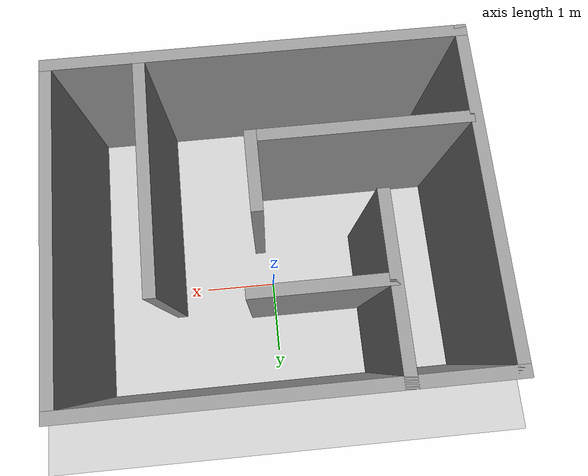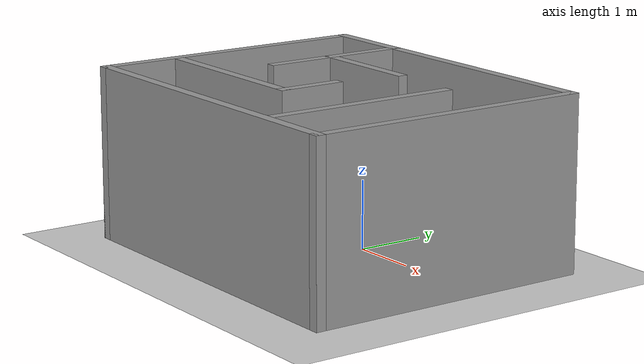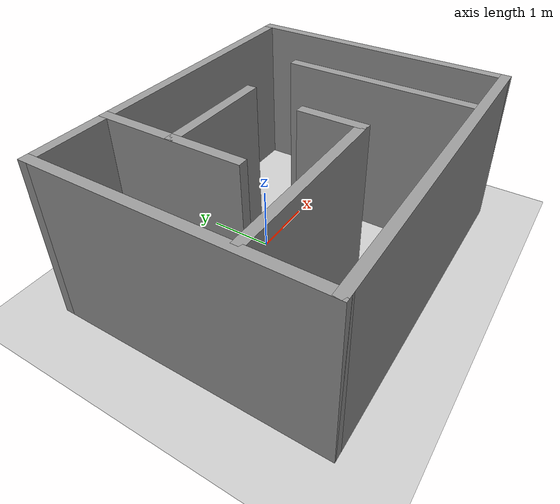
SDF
<sdf version="1.7">
 <world name="default">
  <light name="sun" type="directional">
   <pose>0 0 10 0 -0 0</pose>
   <diffuse>0.8 0.8 0.8 1</diffuse>
   <specular>0.2 0.2 0.2 1</specular>
   <attenuation>
    <range>1000</range>
    <constant>0.9</constant>
    <linear>0.01</linear>
    <quadratic>0.001</quadratic>
   </attenuation>
   <direction>-0.5 0.1 -0.9</direction>
   <spot><inner_angle>0</inner_angle><outer_angle>0</outer_angle><falloff>0</falloff></spot>
  </light>
  <model name="ground_plane">
   <static>1</static>
   <link name="link">
    <collision name="collision">
     <geometry><plane><normal>0 0 1</normal><size>100 100</size></plane></geometry>
     <surface>
      <contact><collide_bitmask>65535</collide_bitmask></contact>
      <friction><ode><mu>100</mu><mu2>50</mu2></ode></friction>
     </surface>
    </collision>
    <visual name="visual">
     <cast_shadows>0</cast_shadows>
     <geometry><plane><normal>0 0 1</normal><size>100 100</size></plane></geometry>
     <material>
      <script><uri>file://media/materials/scripts/gazebo.material</uri><name>Gazebo/Grey</name></script>
     </material>
    </visual>
   </link>
  </model>
  <plugin filename="gz-sim-physics-system" name="gz::sim::systems::Physics"/>
  <plugin filename="gz-sim-user-commands-system" name="gz::sim::systems::UserCommands"/>
  <plugin filename="gz-sim-scene-broadcaster-system" name="gz::sim::systems::SceneBroadcaster"/>
  <plugin filename="gz-sim-sensors-system" name="gz::sim::systems::Sensors">
   <render_engine>ogre2</render_engine>
  </plugin>
  <plugin filename="gz-sim-imu-system" name="gz::sim::systems::Imu"/>
  <gravity>0 0 -9.8</gravity>
  <magnetic_field>6e-06 2.3e-05 -4.2e-05</magnetic_field>
  <atmosphere type="adiabatic"/>
  <physics type="ode">
   <max_step_size>0.001</max_step_size>
   <real_time_factor>1</real_time_factor>
   <real_time_update_rate>1000</real_time_update_rate>
  </physics>
  <scene><ambient>0.4 0.4 0.4 1</ambient><background>0.7 0.7 0.7 1</background><shadows>1</shadows></scene>
  <spherical_coordinates>
   <surface_model>EARTH_WGS84</surface_model>
   <latitude_deg>0</latitude_deg>
   <longitude_deg>0</longitude_deg>
   <elevation>0</elevation>
   <heading_deg>0</heading_deg>
  </spherical_coordinates>
  <model name="final_version">
   <link name="Wall_0">
    <collision name="Wall_0_Collision">
     <geometry><box><size>4.25 0.15 2.5</size></box></geometry>
     <pose>0 0 1.25 0 -0 0</pose>
    </collision>
    <visual name="Wall_0_Visual">
     <pose>0 0 1.25 0 -0 0</pose>
     <geometry><box><size>4.25 0.15 2.5</size></box></geometry>
     <material>
      <script><uri>file://media/materials/scripts/gazebo.material</uri><name>Gazebo/Grey</name></script>
      <ambient>1 1 1 1</ambient>
     </material>
     <meta><layer>0</layer></meta>
    </visual>
    <pose>-2.55 -0.5225 0 0 -0 -1.5708</pose>
   </link>
   <link name="Wall_16">
    <collision name="Wall_16_Collision">
     <geometry><box><size>2.25 0.15 2.5</size></box></geometry>
     <pose>0 0 1.25 0 -0 0</pose>
    </collision>
    <visual name="Wall_16_Visual">
     <pose>0 0 1.25 0 -0 0</pose>
     <geometry><box><size>2.25 0.15 2.5</size></box></geometry>
     <material>
      <script><uri>file://media/materials/scripts/gazebo.material</uri><name>Gazebo/Grey</name></script>
      <ambient>1 1 1 1</ambient>
     </material>
     <meta><layer>0</layer></meta>
    </visual>
    <pose>-1.32 0.4775 0 0 -0 -1.5708</pose>
   </link>
   <link name="Wall_2">
    <collision name="Wall_2_Collision">
     <geometry><box><size>5.25 0.15 2.5</size></box></geometry>
     <pose>0 0 1.25 0 -0 0</pose>
    </collision>
    <visual name="Wall_2_Visual">
     <pose>0 0 1.25 0 -0 0</pose>
     <geometry><box><size>5.25 0.15 2.5</size></box></geometry>
     <material>
      <script><uri>file://media/materials/scripts/gazebo.material</uri><name>Gazebo/Grey</name></script>
      <ambient>1 1 1 1</ambient>
     </material>
     <meta><layer>0</layer></meta>
    </visual>
    <pose>0 -2.5725 0 0 -0 0</pose>
   </link>
   <link name="Wall_22">
    <collision name="Wall_22_Collision">
     <geometry><box><size>2.75 0.15 2.5</size></box></geometry>
     <pose>0 0 1.25 0 -0 0</pose>
    </collision>
    <visual name="Wall_22_Visual">
     <pose>0 0 1.25 0 -0 0</pose>
     <geometry><box><size>2.75 0.15 2.5</size></box></geometry>
     <material>
      <script><uri>file://media/materials/scripts/gazebo.material</uri><name>Gazebo/Grey</name></script>
      <ambient>1 1 1 1</ambient>
     </material>
     <meta><layer>0</layer></meta>
    </visual>
    <pose>-1.15 -1.4325 0 0 -0 3.14159</pose>
   </link>
   <link name="Wall_26">
    <collision name="Wall_26_Collision">
     <geometry><box><size>1.75 0.15 2.5</size></box></geometry>
     <pose>0 0 1.25 0 -0 0</pose>
    </collision>
    <visual name="Wall_26_Visual">
     <pose>0 0 1.25 0 -0 0</pose>
     <geometry><box><size>1.75 0.15 2.5</size></box></geometry>
     <material>
      <script><uri>file://media/materials/scripts/gazebo.material</uri><name>Gazebo/Grey</name></script>
      <ambient>1 1 1 1</ambient>
     </material>
     <meta><layer>0</layer></meta>
    </visual>
    <pose>-0.51 0.4075 0 0 -0 3.14159</pose>
   </link>
   <link name="Wall_28">
    <collision name="Wall_28_Collision">
     <geometry><box><size>1 0.15 2.5</size></box></geometry>
     <pose>0 0 1.25 0 -0 0</pose>
    </collision>
    <visual name="Wall_28_Visual">
     <pose>0 0 1.25 0 -0 0</pose>
     <geometry><box><size>1 0.15 2.5</size></box></geometry>
     <material>
      <script><uri>file://media/materials/scripts/gazebo.material</uri><name>Gazebo/Grey</name></script>
      <ambient>1 1 1 1</ambient>
     </material>
     <meta><layer>0</layer></meta>
    </visual>
    <pose>0.15 -1.0075 0 0 -0 1.5708</pose>
   </link>
   <link name="Wall_4">
    <collision name="Wall_4_Collision">
     <geometry><box><size>5.25 0.15 2.5</size></box></geometry>
     <pose>0 0 1.25 0 -0 0</pose>
    </collision>
    <visual name="Wall_4_Visual">
     <pose>0 0 1.25 0 -0 0</pose>
     <geometry><box><size>5.25 0.15 2.5</size></box></geometry>
     <material>
      <script><uri>file://media/materials/scripts/gazebo.material</uri><name>Gazebo/Grey</name></script>
      <ambient>1 1 1 1</ambient>
     </material>
     <meta><layer>0</layer></meta>
    </visual>
    <pose>0 1.5275 0 0 -0 0</pose>
   </link>
   <link name="Wall_5">
    <collision name="Wall_5_Collision">
     <geometry><box><size>4.25 0.15 2.5</size></box></geometry>
     <pose>0 0 1.25 0 -0 0</pose>
    </collision>
    <visual name="Wall_5_Visual">
     <pose>0 0 1.25 0 -0 0</pose>
     <geometry><box><size>4.25 0.15 2.5</size></box></geometry>
     <material>
      <script><uri>file://media/materials/scripts/gazebo.material</uri><name>Gazebo/Grey</name></script>
      <ambient>1 1 1 1</ambient>
     </material>
     <meta><layer>0</layer></meta>
    </visual>
    <pose>2.55 -0.5225 0 0 -0 -1.5708</pose>
   </link>
   <link name="Wall_8">
    <collision name="Wall_8_Collision">
     <geometry><box><size>3 0.15 2.5</size></box></geometry>
     <pose>0 0 1.25 0 -0 0</pose>
    </collision>
    <visual name="Wall_8_Visual">
     <pose>0 0 1.25 0 -0 0</pose>
     <geometry><box><size>3 0.15 2.5</size></box></geometry>
     <material>
      <script><uri>file://media/materials/scripts/gazebo.material</uri><name>Gazebo/Grey</name></script>
      <ambient>1 1 1 1</ambient>
     </material>
     <meta><layer>0</layer></meta>
    </visual>
    <pose>1.42 -1.1275 0 0 -0 -1.5708</pose>
   </link>
   <static>1</static>
  </model>
 </world>
</sdf>
